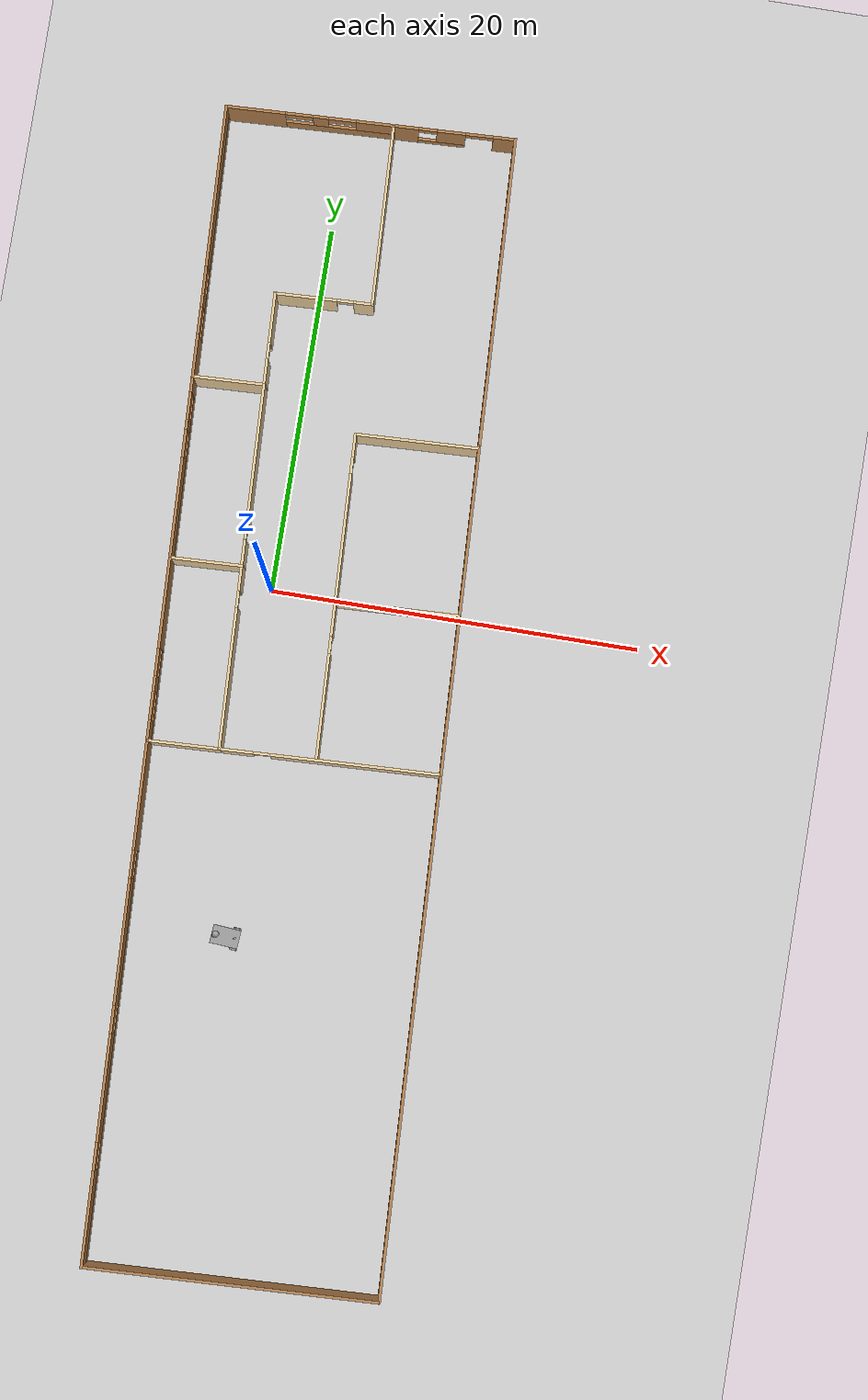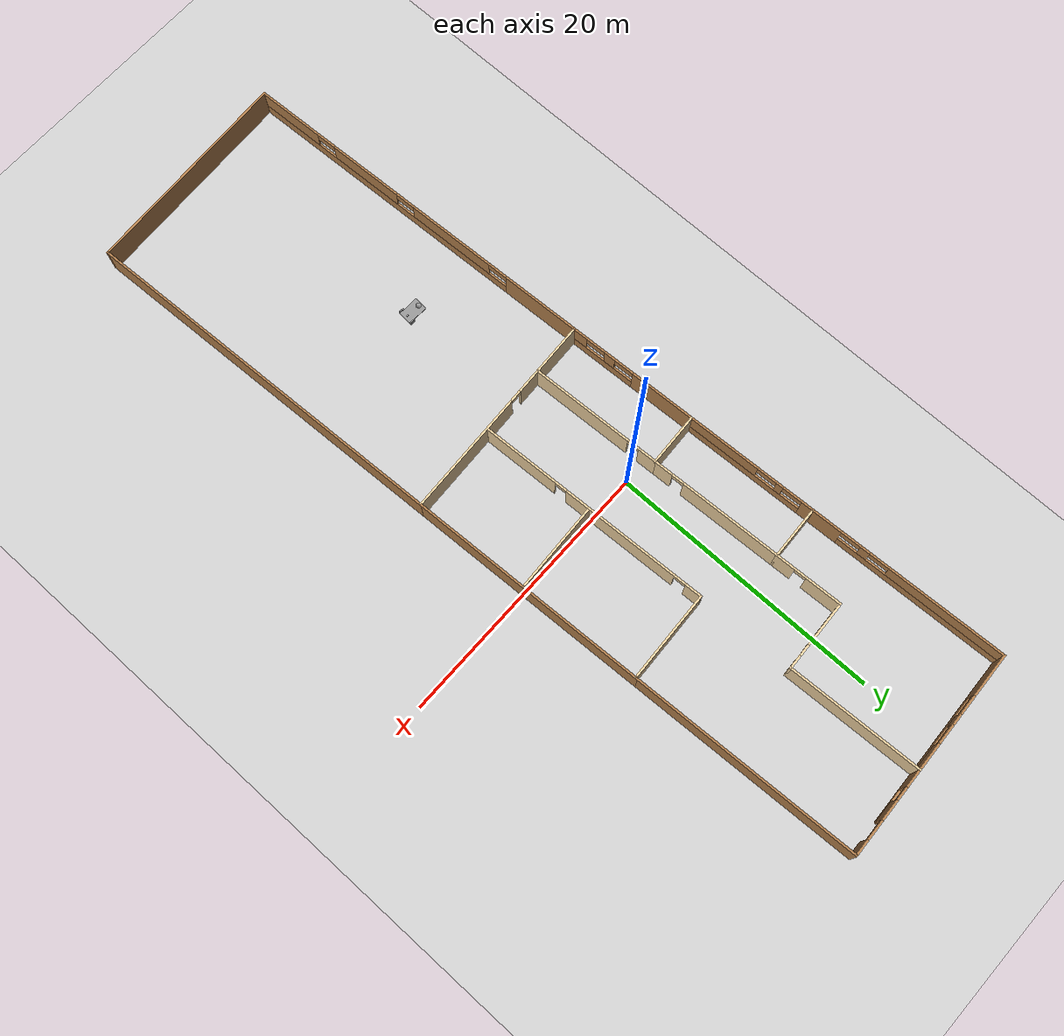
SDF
<sdf version="1.6">
 <world name="default">
  <light name="sun" type="directional">
   <pose>0 0 10 0 -0 0</pose>
   <diffuse>0.8 0.8 0.8 1</diffuse>
   <specular>0.2 0.2 0.2 1</specular>
   <attenuation>
    <range>1000</range>
    <constant>0.9</constant>
    <linear>0.01</linear>
    <quadratic>0.001</quadratic>
   </attenuation>
   <direction>-0.5 0.1 -0.9</direction>
  </light>
  <model name="ground_plane">
   <static>1</static>
   <link name="link">
    <collision name="collision">
     <geometry><plane><normal>0 0 1</normal><size>100 100</size></plane></geometry>
     <surface><friction><ode><mu>100</mu><mu2>50</mu2></ode></friction></surface>
    </collision>
    <visual name="visual">
     <cast_shadows>0</cast_shadows>
     <geometry><plane><normal>0 0 1</normal><size>100 100</size></plane></geometry>
     <material>
      <script><uri>file://media/materials/scripts/gazebo.material</uri><name>Gazebo/Grey</name></script>
     </material>
    </visual>
   </link>
  </model>
  <gravity>0 0 -9.8</gravity>
  <magnetic_field>6e-06 2.3e-05 -4.2e-05</magnetic_field>
  <atmosphere type="adiabatic"/>
  <physics name="default_physics" default="0" type="ode">
   <max_step_size>0.001</max_step_size>
   <real_time_factor>1</real_time_factor>
   <real_time_update_rate>1000</real_time_update_rate>
  </physics>
  <scene><ambient>0.4 0.4 0.4 1</ambient><background>0.7 0.7 0.7 1</background><shadows>1</shadows></scene>
  <spherical_coordinates>
   <surface_model>EARTH_WGS84</surface_model>
   <latitude_deg>0</latitude_deg>
   <longitude_deg>0</longitude_deg>
   <elevation>0</elevation>
   <heading_deg>0</heading_deg>
  </spherical_coordinates>
  <model name="mymodel">
   <pose>2.59322 -5.49881 0 0 -0 1.61356</pose>
   <link name="Wall_119">
    <pose>21.35 1.375 0 0 0 -1.5708</pose>
    <visual name="Wall_119_Visual_0">
     <pose>-0.987502 0 1.25 0 -0 0</pose>
     <geometry><box><size>3.425 0.15 2.5</size></box></geometry>
     <material>
      <script><uri>file://media/materials/scripts/gazebo.material</uri><name>Gazebo/Grey</name></script>
      <ambient>0.921569 0.807843 0.615686 1</ambient>
     </material>
    </visual>
    <collision name="Wall_119_Collision_0">
     <geometry><box><size>3.425 0.15 2.5</size></box></geometry>
     <pose>-0.987502 0 1.25 0 -0 0</pose>
    </collision>
    <visual name="Wall_119_Visual_1">
     <pose>2.1625 0 1.25 0 -0 0</pose>
     <geometry><box><size>1.075 0.15 2.5</size></box></geometry>
     <material>
      <script><uri>file://media/materials/scripts/gazebo.material</uri><name>Gazebo/Grey</name></script>
      <ambient>0.921569 0.807843 0.615686 1</ambient>
     </material>
    </visual>
    <collision name="Wall_119_Collision_1">
     <geometry><box><size>1.075 0.15 2.5</size></box></geometry>
     <pose>2.1625 0 1.25 0 -0 0</pose>
    </collision>
    <visual name="Wall_119_Visual_2">
     <pose>1.175 0 2.25 0 -0 0</pose>
     <geometry><box><size>0.9 0.15 0.5</size></box></geometry>
     <material>
      <script><uri>file://media/materials/scripts/gazebo.material</uri><name>Gazebo/Grey</name></script>
      <ambient>0.921569 0.807843 0.615686 1</ambient>
     </material>
    </visual>
    <collision name="Wall_119_Collision_2">
     <geometry><box><size>0.9 0.15 0.5</size></box></geometry>
     <pose>1.175 0 2.25 0 -0 0</pose>
    </collision>
   </link>
   <link name="Wall_123">
    <collision name="Wall_123_Collision">
     <geometry><box><size>10 0.15 2.5</size></box></geometry>
     <pose>0 0 1.25 0 -0 0</pose>
    </collision>
    <visual name="Wall_123_Visual">
     <pose>0 0 1.25 0 -0 0</pose>
     <geometry><box><size>10 0.15 2.5</size></box></geometry>
     <material>
      <script><uri>file://media/materials/scripts/gazebo.material</uri><name>Gazebo/Grey</name></script>
      <ambient>0.921569 0.807843 0.615686 1</ambient>
     </material>
    </visual>
    <pose>26.275 -1.25 0 0 -0 0</pose>
   </link>
   <link name="Wall_125">
    <pose>1.575 7.85 0 0 -0 3.14159</pose>
    <visual name="Wall_125_Visual_0">
     <pose>-2.52053 0 1.25 0 -0 0</pose>
     <geometry><box><size>4.95895 0.15 2.5</size></box></geometry>
     <material>
      <script><uri>file://media/materials/scripts/gazebo.material</uri><name>Gazebo/Wood</name></script>
      <ambient>0.996078 0.47451 0.0196078 1</ambient>
     </material>
    </visual>
    <collision name="Wall_125_Collision_0">
     <geometry><box><size>4.95895 0.15 2.5</size></box></geometry>
     <pose>-2.52053 0 1.25 0 -0 0</pose>
    </collision>
    <visual name="Wall_125_Visual_1">
     <pose>2.47947 0 0.5 0 -0 0</pose>
     <geometry><box><size>5.04105 0.15 1</size></box></geometry>
     <material>
      <script><uri>file://media/materials/scripts/gazebo.material</uri><name>Gazebo/Wood</name></script>
      <ambient>0.996078 0.47451 0.0196078 1</ambient>
     </material>
    </visual>
    <collision name="Wall_125_Collision_1">
     <geometry><box><size>5.04105 0.15 1</size></box></geometry>
     <pose>2.47947 0 0.5 0 -0 0</pose>
    </collision>
    <visual name="Wall_125_Visual_2">
     <pose>1.88216 0 1.75 0 -0 0</pose>
     <geometry><box><size>0.846424 0.15 1.5</size></box></geometry>
     <material>
      <script><uri>file://media/materials/scripts/gazebo.material</uri><name>Gazebo/Wood</name></script>
      <ambient>0.996078 0.47451 0.0196078 1</ambient>
     </material>
    </visual>
    <collision name="Wall_125_Collision_2">
     <geometry><box><size>0.846424 0.15 1.5</size></box></geometry>
     <pose>1.88216 0 1.75 0 -0 0</pose>
    </collision>
    <visual name="Wall_125_Visual_3">
     <pose>4.40268 0 1.75 0 -0 0</pose>
     <geometry><box><size>1.19463 0.15 1.5</size></box></geometry>
     <material>
      <script><uri>file://media/materials/scripts/gazebo.material</uri><name>Gazebo/Wood</name></script>
      <ambient>0.996078 0.47451 0.0196078 1</ambient>
     </material>
    </visual>
    <collision name="Wall_125_Collision_3">
     <geometry><box><size>1.19463 0.15 1.5</size></box></geometry>
     <pose>4.40268 0 1.75 0 -0 0</pose>
    </collision>
    <visual name="Wall_125_Visual_4">
     <pose>0.708946 0 2.15 0 -0 0</pose>
     <geometry><box><size>1.5 0.15 0.7</size></box></geometry>
     <material>
      <script><uri>file://media/materials/scripts/gazebo.material</uri><name>Gazebo/Wood</name></script>
      <ambient>0.996078 0.47451 0.0196078 1</ambient>
     </material>
    </visual>
    <collision name="Wall_125_Collision_4">
     <geometry><box><size>1.5 0.15 0.7</size></box></geometry>
     <pose>0.708946 0 2.15 0 -0 0</pose>
    </collision>
    <visual name="Wall_125_Visual_5">
     <pose>3.05537 0 2.15 0 -0 0</pose>
     <geometry><box><size>1.5 0.15 0.7</size></box></geometry>
     <material>
      <script><uri>file://media/materials/scripts/gazebo.material</uri><name>Gazebo/Wood</name></script>
      <ambient>0.996078 0.47451 0.0196078 1</ambient>
     </material>
    </visual>
    <collision name="Wall_125_Collision_5">
     <geometry><box><size>1.5 0.15 0.7</size></box></geometry>
     <pose>3.05537 0 2.15 0 -0 0</pose>
    </collision>
   </link>
   <link name="Wall_127">
    <collision name="Wall_127_Collision">
     <geometry><box><size>4 0.15 2.5</size></box></geometry>
     <pose>0 0 1.25 0 -0 0</pose>
    </collision>
    <visual name="Wall_127_Visual">
     <pose>0 0 1.25 0 -0 0</pose>
     <geometry><box><size>4 0.15 2.5</size></box></geometry>
     <material>
      <script><uri>file://media/materials/scripts/gazebo.material</uri><name>Gazebo/Grey</name></script>
      <ambient>0.921569 0.807843 0.615686 1</ambient>
     </material>
    </visual>
    <pose>-3.35 5.925 0 0 0 -1.5708</pose>
   </link>
   <link name="Wall_129">
    <pose>1.575 4 0 0 -0 0</pose>
    <visual name="Wall_129_Visual_0">
     <pose>-1.15906 0 1.25 0 -0 0</pose>
     <geometry><box><size>7.68187 0.15 2.5</size></box></geometry>
     <material>
      <script><uri>file://media/materials/scripts/gazebo.material</uri><name>Gazebo/Grey</name></script>
      <ambient>0.921569 0.807843 0.615686 1</ambient>
     </material>
    </visual>
    <collision name="Wall_129_Collision_0">
     <geometry><box><size>7.68187 0.15 2.5</size></box></geometry>
     <pose>-1.15906 0 1.25 0 -0 0</pose>
    </collision>
    <visual name="Wall_129_Visual_1">
     <pose>4.29094 0 1.25 0 -0 0</pose>
     <geometry><box><size>1.41813 0.15 2.5</size></box></geometry>
     <material>
      <script><uri>file://media/materials/scripts/gazebo.material</uri><name>Gazebo/Grey</name></script>
      <ambient>0.921569 0.807843 0.615686 1</ambient>
     </material>
    </visual>
    <collision name="Wall_129_Collision_1">
     <geometry><box><size>1.41813 0.15 2.5</size></box></geometry>
     <pose>4.29094 0 1.25 0 -0 0</pose>
    </collision>
    <visual name="Wall_129_Visual_2">
     <pose>3.13187 0 2.25 0 -0 0</pose>
     <geometry><box><size>0.9 0.15 0.5</size></box></geometry>
     <material>
      <script><uri>file://media/materials/scripts/gazebo.material</uri><name>Gazebo/Grey</name></script>
      <ambient>0.921569 0.807843 0.615686 1</ambient>
     </material>
    </visual>
    <collision name="Wall_129_Collision_2">
     <geometry><box><size>0.9 0.15 0.5</size></box></geometry>
     <pose>3.13187 0 2.25 0 -0 0</pose>
    </collision>
   </link>
   <link name="Wall_144">
    <pose>-17.275 7.85 0 0 -0 3.14159</pose>
    <visual name="Wall_144_Visual_0">
     <pose>-11.0233 0 1.25 0 -0 0</pose>
     <geometry><box><size>5.95337 0.15 2.5</size></box></geometry>
     <material>
      <script><uri>file://media/materials/scripts/gazebo.material</uri><name>Gazebo/Wood</name></script>
      <ambient>0.996078 0.47451 0.0196078 1</ambient>
     </material>
    </visual>
    <collision name="Wall_144_Collision_0">
     <geometry><box><size>5.95337 0.15 2.5</size></box></geometry>
     <pose>-11.0233 0 1.25 0 -0 0</pose>
    </collision>
    <visual name="Wall_144_Visual_1">
     <pose>2.97669 0 0.5 0 -0 0</pose>
     <geometry><box><size>22.0466 0.15 1</size></box></geometry>
     <material>
      <script><uri>file://media/materials/scripts/gazebo.material</uri><name>Gazebo/Wood</name></script>
      <ambient>0.996078 0.47451 0.0196078 1</ambient>
     </material>
    </visual>
    <collision name="Wall_144_Collision_1">
     <geometry><box><size>22.0466 0.15 1</size></box></geometry>
     <pose>2.97669 0 0.5 0 -0 0</pose>
    </collision>
    <visual name="Wall_144_Visual_2">
     <pose>-3.18177 0 1.75 0 -0 0</pose>
     <geometry><box><size>6.72973 0.15 1.5</size></box></geometry>
     <material>
      <script><uri>file://media/materials/scripts/gazebo.material</uri><name>Gazebo/Wood</name></script>
      <ambient>0.996078 0.47451 0.0196078 1</ambient>
     </material>
    </visual>
    <collision name="Wall_144_Collision_2">
     <geometry><box><size>6.72973 0.15 1.5</size></box></geometry>
     <pose>-3.18177 0 1.75 0 -0 0</pose>
    </collision>
    <visual name="Wall_144_Visual_3">
     <pose>4.53578 0 1.75 0 -0 0</pose>
     <geometry><box><size>5.70537 0.15 1.5</size></box></geometry>
     <material>
      <script><uri>file://media/materials/scripts/gazebo.material</uri><name>Gazebo/Wood</name></script>
      <ambient>0.996078 0.47451 0.0196078 1</ambient>
     </material>
    </visual>
    <collision name="Wall_144_Collision_3">
     <geometry><box><size>5.70537 0.15 1.5</size></box></geometry>
     <pose>4.53578 0 1.75 0 -0 0</pose>
    </collision>
    <visual name="Wall_144_Visual_4">
     <pose>11.4442 0 1.75 0 -0 0</pose>
     <geometry><box><size>5.11153 0.15 1.5</size></box></geometry>
     <material>
      <script><uri>file://media/materials/scripts/gazebo.material</uri><name>Gazebo/Wood</name></script>
      <ambient>0.996078 0.47451 0.0196078 1</ambient>
     </material>
    </visual>
    <collision name="Wall_144_Collision_4">
     <geometry><box><size>5.11153 0.15 1.5</size></box></geometry>
     <pose>11.4442 0 1.75 0 -0 0</pose>
    </collision>
    <visual name="Wall_144_Visual_5">
     <pose>-7.29663 0 2.15 0 -0 0</pose>
     <geometry><box><size>1.5 0.15 0.7</size></box></geometry>
     <material>
      <script><uri>file://media/materials/scripts/gazebo.material</uri><name>Gazebo/Wood</name></script>
      <ambient>0.996078 0.47451 0.0196078 1</ambient>
     </material>
    </visual>
    <collision name="Wall_144_Collision_5">
     <geometry><box><size>1.5 0.15 0.7</size></box></geometry>
     <pose>-7.29663 0 2.15 0 -0 0</pose>
    </collision>
    <visual name="Wall_144_Visual_6">
     <pose>0.933096 0 2.15 0 -0 0</pose>
     <geometry><box><size>1.5 0.15 0.7</size></box></geometry>
     <material>
      <script><uri>file://media/materials/scripts/gazebo.material</uri><name>Gazebo/Wood</name></script>
      <ambient>0.996078 0.47451 0.0196078 1</ambient>
     </material>
    </visual>
    <collision name="Wall_144_Collision_6">
     <geometry><box><size>1.5 0.15 0.7</size></box></geometry>
     <pose>0.933096 0 2.15 0 -0 0</pose>
    </collision>
    <visual name="Wall_144_Visual_7">
     <pose>8.13847 0 2.15 0 -0 0</pose>
     <geometry><box><size>1.5 0.15 0.7</size></box></geometry>
     <material>
      <script><uri>file://media/materials/scripts/gazebo.material</uri><name>Gazebo/Wood</name></script>
      <ambient>0.996078 0.47451 0.0196078 1</ambient>
     </material>
    </visual>
    <collision name="Wall_144_Collision_7">
     <geometry><box><size>1.5 0.15 0.7</size></box></geometry>
     <pose>8.13847 0 2.15 0 -0 0</pose>
    </collision>
   </link>
   <link name="Wall_145">
    <collision name="Wall_145_Collision">
     <geometry><box><size>15.85 0.15 2.5</size></box></geometry>
     <pose>0 0 1.25 0 -0 0</pose>
    </collision>
    <visual name="Wall_145_Visual">
     <pose>0 0 1.25 0 -0 0</pose>
     <geometry><box><size>15.85 0.15 2.5</size></box></geometry>
     <material>
      <script><uri>file://media/materials/scripts/gazebo.material</uri><name>Gazebo/Wood</name></script>
      <ambient>0.996078 0.47451 0.0196078 1</ambient>
     </material>
    </visual>
    <pose>-31.2 0 0 0 0 -1.5708</pose>
   </link>
   <link name="Wall_148">
    <pose>-3.35 -1.925 0 0 0 -1.5708</pose>
    <visual name="Wall_148_Visual_0">
     <pose>-5.0473 0 1.25 0 -0 0</pose>
     <geometry><box><size>1.90541 0.15 2.5</size></box></geometry>
     <material>
      <script><uri>file://media/materials/scripts/gazebo.material</uri><name>Gazebo/Grey</name></script>
      <ambient>0.921569 0.807843 0.615686 1</ambient>
     </material>
    </visual>
    <collision name="Wall_148_Collision_0">
     <geometry><box><size>1.90541 0.15 2.5</size></box></geometry>
     <pose>-5.0473 0 1.25 0 -0 0</pose>
    </collision>
    <visual name="Wall_148_Visual_1">
     <pose>1.4027 0 1.25 0 -0 0</pose>
     <geometry><box><size>9.19459 0.15 2.5</size></box></geometry>
     <material>
      <script><uri>file://media/materials/scripts/gazebo.material</uri><name>Gazebo/Grey</name></script>
      <ambient>0.921569 0.807843 0.615686 1</ambient>
     </material>
    </visual>
    <collision name="Wall_148_Collision_1">
     <geometry><box><size>9.19459 0.15 2.5</size></box></geometry>
     <pose>1.4027 0 1.25 0 -0 0</pose>
    </collision>
    <visual name="Wall_148_Visual_2">
     <pose>-3.64459 0 2.25 0 -0 0</pose>
     <geometry><box><size>0.9 0.15 0.5</size></box></geometry>
     <material>
      <script><uri>file://media/materials/scripts/gazebo.material</uri><name>Gazebo/Grey</name></script>
      <ambient>0.921569 0.807843 0.615686 1</ambient>
     </material>
    </visual>
    <collision name="Wall_148_Collision_2">
     <geometry><box><size>0.9 0.15 0.5</size></box></geometry>
     <pose>-3.64459 0 2.25 0 -0 0</pose>
    </collision>
   </link>
   <link name="Wall_160">
    <pose>5.52431 -1.18597 0 0 0 -3e-06</pose>
    <visual name="Wall_160_Visual_0">
     <pose>-5.96657 0 1.25 0 -0 0</pose>
     <geometry><box><size>5.67479 0.15 2.5</size></box></geometry>
     <material>
      <script><uri>file://media/materials/scripts/gazebo.material</uri><name>Gazebo/Grey</name></script>
      <ambient>0.921569 0.807843 0.615686 1</ambient>
     </material>
    </visual>
    <collision name="Wall_160_Collision_0">
     <geometry><box><size>5.67479 0.15 2.5</size></box></geometry>
     <pose>-5.96657 0 1.25 0 -0 0</pose>
    </collision>
    <visual name="Wall_160_Visual_1">
     <pose>2.18678 0 1.25 0 -0 0</pose>
     <geometry><box><size>8.83193 0.15 2.5</size></box></geometry>
     <material>
      <script><uri>file://media/materials/scripts/gazebo.material</uri><name>Gazebo/Grey</name></script>
      <ambient>0.921569 0.807843 0.615686 1</ambient>
     </material>
    </visual>
    <collision name="Wall_160_Collision_1">
     <geometry><box><size>8.83193 0.15 2.5</size></box></geometry>
     <pose>2.18678 0 1.25 0 -0 0</pose>
    </collision>
    <visual name="Wall_160_Visual_2">
     <pose>8.15336 0 1.25 0 -0 0</pose>
     <geometry><box><size>1.30122 0.15 2.5</size></box></geometry>
     <material>
      <script><uri>file://media/materials/scripts/gazebo.material</uri><name>Gazebo/Grey</name></script>
      <ambient>0.921569 0.807843 0.615686 1</ambient>
     </material>
    </visual>
    <collision name="Wall_160_Collision_2">
     <geometry><box><size>1.30122 0.15 2.5</size></box></geometry>
     <pose>8.15336 0 1.25 0 -0 0</pose>
    </collision>
    <visual name="Wall_160_Visual_3">
     <pose>-2.67918 0 2.25 0 -0 0</pose>
     <geometry><box><size>0.9 0.15 0.5</size></box></geometry>
     <material>
      <script><uri>file://media/materials/scripts/gazebo.material</uri><name>Gazebo/Grey</name></script>
      <ambient>0.921569 0.807843 0.615686 1</ambient>
     </material>
    </visual>
    <collision name="Wall_160_Collision_3">
     <geometry><box><size>0.9 0.15 0.5</size></box></geometry>
     <pose>-2.67918 0 2.25 0 -0 0</pose>
    </collision>
    <visual name="Wall_160_Visual_4">
     <pose>7.05275 0 2.25 0 -0 0</pose>
     <geometry><box><size>0.9 0.15 0.5</size></box></geometry>
     <material>
      <script><uri>file://media/materials/scripts/gazebo.material</uri><name>Gazebo/Grey</name></script>
      <ambient>0.921569 0.807843 0.615686 1</ambient>
     </material>
    </visual>
    <collision name="Wall_160_Collision_4">
     <geometry><box><size>0.9 0.15 0.5</size></box></geometry>
     <pose>7.05275 0 2.25 0 -0 0</pose>
    </collision>
   </link>
   <link name="Wall_166">
    <pose>31.2 -4.55 0 0 0 -1.5708</pose>
    <visual name="Wall_166_Visual_0">
     <pose>-2.6617 0 1.25 0 -0 0</pose>
     <geometry><box><size>1.4266 0.15 2.5</size></box></geometry>
     <material>
      <script><uri>file://media/materials/scripts/gazebo.material</uri><name>Gazebo/Wood</name></script>
      <ambient>0.996078 0.47451 0.0196078 1</ambient>
     </material>
    </visual>
    <collision name="Wall_166_Collision_0">
     <geometry><box><size>1.4266 0.15 2.5</size></box></geometry>
     <pose>-2.6617 0 1.25 0 -0 0</pose>
    </collision>
    <visual name="Wall_166_Visual_1">
     <pose>2.74194 0 1.25 0 -0 0</pose>
     <geometry><box><size>1.26611 0.15 2.5</size></box></geometry>
     <material>
      <script><uri>file://media/materials/scripts/gazebo.material</uri><name>Gazebo/Wood</name></script>
      <ambient>0.996078 0.47451 0.0196078 1</ambient>
     </material>
    </visual>
    <collision name="Wall_166_Collision_1">
     <geometry><box><size>1.26611 0.15 2.5</size></box></geometry>
     <pose>2.74194 0 1.25 0 -0 0</pose>
    </collision>
    <visual name="Wall_166_Visual_2">
     <pose>-0.669753 0 0.25 0 -0 0</pose>
     <geometry><box><size>2.55729 0.15 0.5</size></box></geometry>
     <material>
      <script><uri>file://media/materials/scripts/gazebo.material</uri><name>Gazebo/Wood</name></script>
      <ambient>0.996078 0.47451 0.0196078 1</ambient>
     </material>
    </visual>
    <collision name="Wall_166_Collision_2">
     <geometry><box><size>2.55729 0.15 0.5</size></box></geometry>
     <pose>-0.669753 0 0.25 0 -0 0</pose>
    </collision>
    <visual name="Wall_166_Visual_3">
     <pose>-0.169753 0 1.5 0 -0 0</pose>
     <geometry><box><size>1.55729 0.15 2</size></box></geometry>
     <material>
      <script><uri>file://media/materials/scripts/gazebo.material</uri><name>Gazebo/Wood</name></script>
      <ambient>0.996078 0.47451 0.0196078 1</ambient>
     </material>
    </visual>
    <collision name="Wall_166_Collision_3">
     <geometry><box><size>1.55729 0.15 2</size></box></geometry>
     <pose>-0.169753 0 1.5 0 -0 0</pose>
    </collision>
    <visual name="Wall_166_Visual_4">
     <pose>-1.4484 0 2.25 0 -0 0</pose>
     <geometry><box><size>1 0.15 0.5</size></box></geometry>
     <material>
      <script><uri>file://media/materials/scripts/gazebo.material</uri><name>Gazebo/Wood</name></script>
      <ambient>0.996078 0.47451 0.0196078 1</ambient>
     </material>
    </visual>
    <collision name="Wall_166_Collision_4">
     <geometry><box><size>1 0.15 0.5</size></box></geometry>
     <pose>-1.4484 0 2.25 0 -0 0</pose>
    </collision>
    <visual name="Wall_166_Visual_5">
     <pose>1.35889 0 2.25 0 -0 0</pose>
     <geometry><box><size>1.5 0.15 0.5</size></box></geometry>
     <material>
      <script><uri>file://media/materials/scripts/gazebo.material</uri><name>Gazebo/Wood</name></script>
      <ambient>0.996078 0.47451 0.0196078 1</ambient>
     </material>
    </visual>
    <collision name="Wall_166_Collision_5">
     <geometry><box><size>1.5 0.15 0.5</size></box></geometry>
     <pose>1.35889 0 2.25 0 -0 0</pose>
    </collision>
   </link>
   <link name="Wall_170">
    <collision name="Wall_170_Collision">
     <geometry><box><size>6.814 0.15 2.5</size></box></geometry>
     <pose>0 0 1.25 0 -0 0</pose>
    </collision>
    <visual name="Wall_170_Visual">
     <pose>0 0 1.25 0 -0 0</pose>
     <geometry><box><size>6.814 0.15 2.5</size></box></geometry>
     <material>
      <script><uri>file://media/materials/scripts/gazebo.material</uri><name>Gazebo/Grey</name></script>
      <ambient>0.921569 0.807843 0.615686 1</ambient>
     </material>
    </visual>
    <pose>14.253 -4.518 0 0 0 -1.5708</pose>
   </link>
   <link name="Wall_173">
    <collision name="Wall_173_Collision">
     <geometry><box><size>17 0.15 2.5</size></box></geometry>
     <pose>0 0 1.25 0 -0 0</pose>
    </collision>
    <visual name="Wall_173_Visual">
     <pose>0 0 1.25 0 -0 0</pose>
     <geometry><box><size>17 0.15 2.5</size></box></geometry>
     <material>
      <script><uri>file://media/materials/scripts/gazebo.material</uri><name>Gazebo/Wood</name></script>
      <ambient>0.996078 0.47451 0.0196078 1</ambient>
     </material>
    </visual>
    <pose>22.775 -7.85 0 0 -0 3.14159</pose>
   </link>
   <link name="Wall_174">
    <collision name="Wall_174_Collision">
     <geometry><box><size>17.85 0.15 2.5</size></box></geometry>
     <pose>0 0 1.25 0 -0 0</pose>
    </collision>
    <visual name="Wall_174_Visual">
     <pose>0 0 1.25 0 -0 0</pose>
     <geometry><box><size>17.85 0.15 2.5</size></box></geometry>
     <material>
      <script><uri>file://media/materials/scripts/gazebo.material</uri><name>Gazebo/Wood</name></script>
      <ambient>0.996078 0.47451 0.0196078 1</ambient>
     </material>
    </visual>
    <pose>5.5 -7.85 0 0 -0 3.14159</pose>
   </link>
   <link name="Wall_175">
    <collision name="Wall_175_Collision">
     <geometry><box><size>28 0.15 2.5</size></box></geometry>
     <pose>0 0 1.25 0 -0 0</pose>
    </collision>
    <visual name="Wall_175_Visual">
     <pose>0 0 1.25 0 -0 0</pose>
     <geometry><box><size>28 0.15 2.5</size></box></geometry>
     <material>
      <script><uri>file://media/materials/scripts/gazebo.material</uri><name>Gazebo/Wood</name></script>
      <ambient>0.996078 0.47451 0.0196078 1</ambient>
     </material>
    </visual>
    <pose>-17.275 -7.85 0 0 -0 3.14159</pose>
   </link>
   <link name="Wall_177">
    <collision name="Wall_177_Collision">
     <geometry><box><size>6.75 0.15 2.5</size></box></geometry>
     <pose>0 0 1.25 0 -0 0</pose>
    </collision>
    <visual name="Wall_177_Visual">
     <pose>0 0 1.25 0 -0 0</pose>
     <geometry><box><size>6.75 0.15 2.5</size></box></geometry>
     <material>
      <script><uri>file://media/materials/scripts/gazebo.material</uri><name>Gazebo/Grey</name></script>
      <ambient>0.921569 0.807843 0.615686 1</ambient>
     </material>
    </visual>
    <pose>5.18454 -4.51051 0 0 0 -1.5708</pose>
   </link>
   <link name="Wall_29">
    <pose>23.775 7.85 0 0 -0 0</pose>
    <visual name="Wall_29_Visual_0">
     <pose>-6.31514 0 1.25 0 -0 0</pose>
     <geometry><box><size>2.36971 0.15 2.5</size></box></geometry>
     <material>
      <script><uri>file://media/materials/scripts/gazebo.material</uri><name>Gazebo/Wood</name></script>
      <ambient>0.996078 0.47451 0.0196078 1</ambient>
     </material>
    </visual>
    <collision name="Wall_29_Collision_0">
     <geometry><box><size>2.36971 0.15 2.5</size></box></geometry>
     <pose>-6.31514 0 1.25 0 -0 0</pose>
    </collision>
    <visual name="Wall_29_Visual_1">
     <pose>1.18486 0 0.5 0 -0 0</pose>
     <geometry><box><size>12.6303 0.15 1</size></box></geometry>
     <material>
      <script><uri>file://media/materials/scripts/gazebo.material</uri><name>Gazebo/Wood</name></script>
      <ambient>0.996078 0.47451 0.0196078 1</ambient>
     </material>
    </visual>
    <collision name="Wall_29_Collision_1">
     <geometry><box><size>12.6303 0.15 1</size></box></geometry>
     <pose>1.18486 0 0.5 0 -0 0</pose>
    </collision>
    <visual name="Wall_29_Visual_2">
     <pose>-3.26225 0 1.75 0 -0 0</pose>
     <geometry><box><size>0.736064 0.15 1.5</size></box></geometry>
     <material>
      <script><uri>file://media/materials/scripts/gazebo.material</uri><name>Gazebo/Wood</name></script>
      <ambient>0.996078 0.47451 0.0196078 1</ambient>
     </material>
    </visual>
    <collision name="Wall_29_Collision_2">
     <geometry><box><size>0.736064 0.15 1.5</size></box></geometry>
     <pose>-3.26225 0 1.75 0 -0 0</pose>
    </collision>
    <visual name="Wall_29_Visual_3">
     <pose>3.05289 0 1.75 0 -0 0</pose>
     <geometry><box><size>8.89422 0.15 1.5</size></box></geometry>
     <material>
      <script><uri>file://media/materials/scripts/gazebo.material</uri><name>Gazebo/Wood</name></script>
      <ambient>0.996078 0.47451 0.0196078 1</ambient>
     </material>
    </visual>
    <collision name="Wall_29_Collision_3">
     <geometry><box><size>8.89422 0.15 1.5</size></box></geometry>
     <pose>3.05289 0 1.75 0 -0 0</pose>
    </collision>
    <visual name="Wall_29_Visual_4">
     <pose>-4.38029 0 2.15 0 -0 0</pose>
     <geometry><box><size>1.5 0.15 0.7</size></box></geometry>
     <material>
      <script><uri>file://media/materials/scripts/gazebo.material</uri><name>Gazebo/Wood</name></script>
      <ambient>0.996078 0.47451 0.0196078 1</ambient>
     </material>
    </visual>
    <collision name="Wall_29_Collision_4">
     <geometry><box><size>1.5 0.15 0.7</size></box></geometry>
     <pose>-4.38029 0 2.15 0 -0 0</pose>
    </collision>
    <visual name="Wall_29_Visual_5">
     <pose>-2.14422 0 2.15 0 -0 0</pose>
     <geometry><box><size>1.5 0.15 0.7</size></box></geometry>
     <material>
      <script><uri>file://media/materials/scripts/gazebo.material</uri><name>Gazebo/Wood</name></script>
      <ambient>0.996078 0.47451 0.0196078 1</ambient>
     </material>
    </visual>
    <collision name="Wall_29_Collision_5">
     <geometry><box><size>1.5 0.15 0.7</size></box></geometry>
     <pose>-2.14422 0 2.15 0 -0 0</pose>
    </collision>
   </link>
   <link name="Wall_31">
    <pose>31.2 3.3 0 0 0 -1.5708</pose>
    <visual name="Wall_31_Visual_0">
     <pose>-2.97432 0 1.25 0 -0 0</pose>
     <geometry><box><size>3.30136 0.15 2.5</size></box></geometry>
     <material>
      <script><uri>file://media/materials/scripts/gazebo.material</uri><name>Gazebo/Wood</name></script>
      <ambient>0.996078 0.47451 0.0196078 1</ambient>
     </material>
    </visual>
    <collision name="Wall_31_Collision_0">
     <geometry><box><size>3.30136 0.15 2.5</size></box></geometry>
     <pose>-2.97432 0 1.25 0 -0 0</pose>
    </collision>
    <visual name="Wall_31_Visual_1">
     <pose>1.65068 0 0.5 0 -0 0</pose>
     <geometry><box><size>5.94864 0.15 1</size></box></geometry>
     <material>
      <script><uri>file://media/materials/scripts/gazebo.material</uri><name>Gazebo/Wood</name></script>
      <ambient>0.996078 0.47451 0.0196078 1</ambient>
     </material>
    </visual>
    <collision name="Wall_31_Collision_1">
     <geometry><box><size>5.94864 0.15 1</size></box></geometry>
     <pose>1.65068 0 0.5 0 -0 0</pose>
    </collision>
    <visual name="Wall_31_Visual_2">
     <pose>0.58726 0 1.75 0 -0 0</pose>
     <geometry><box><size>0.821797 0.15 1.5</size></box></geometry>
     <material>
      <script><uri>file://media/materials/scripts/gazebo.material</uri><name>Gazebo/Wood</name></script>
      <ambient>0.996078 0.47451 0.0196078 1</ambient>
     </material>
    </visual>
    <collision name="Wall_31_Collision_2">
     <geometry><box><size>0.821797 0.15 1.5</size></box></geometry>
     <pose>0.58726 0 1.75 0 -0 0</pose>
    </collision>
    <visual name="Wall_31_Visual_3">
     <pose>3.56158 0 1.75 0 -0 0</pose>
     <geometry><box><size>2.12684 0.15 1.5</size></box></geometry>
     <material>
      <script><uri>file://media/materials/scripts/gazebo.material</uri><name>Gazebo/Wood</name></script>
      <ambient>0.996078 0.47451 0.0196078 1</ambient>
     </material>
    </visual>
    <collision name="Wall_31_Collision_3">
     <geometry><box><size>2.12684 0.15 1.5</size></box></geometry>
     <pose>3.56158 0 1.75 0 -0 0</pose>
    </collision>
    <visual name="Wall_31_Visual_4">
     <pose>-0.573638 0 2.15 0 -0 0</pose>
     <geometry><box><size>1.5 0.15 0.7</size></box></geometry>
     <material>
      <script><uri>file://media/materials/scripts/gazebo.material</uri><name>Gazebo/Wood</name></script>
      <ambient>0.996078 0.47451 0.0196078 1</ambient>
     </material>
    </visual>
    <collision name="Wall_31_Collision_4">
     <geometry><box><size>1.5 0.15 0.7</size></box></geometry>
     <pose>-0.573638 0 2.15 0 -0 0</pose>
    </collision>
    <visual name="Wall_31_Visual_5">
     <pose>1.74816 0 2.15 0 -0 0</pose>
     <geometry><box><size>1.5 0.15 0.7</size></box></geometry>
     <material>
      <script><uri>file://media/materials/scripts/gazebo.material</uri><name>Gazebo/Wood</name></script>
      <ambient>0.996078 0.47451 0.0196078 1</ambient>
     </material>
    </visual>
    <collision name="Wall_31_Collision_5">
     <geometry><box><size>1.5 0.15 0.7</size></box></geometry>
     <pose>1.74816 0 2.15 0 -0 0</pose>
    </collision>
   </link>
   <link name="Wall_44">
    <pose>11.425 7.85 0 0 -0 3.14159</pose>
    <visual name="Wall_44_Visual_0">
     <pose>-4.52844 0 1.25 0 -0 0</pose>
     <geometry><box><size>0.943112 0.15 2.5</size></box></geometry>
     <material>
      <script><uri>file://media/materials/scripts/gazebo.material</uri><name>Gazebo/Wood</name></script>
      <ambient>0.996078 0.47451 0.0196078 1</ambient>
     </material>
    </visual>
    <collision name="Wall_44_Collision_0">
     <geometry><box><size>0.943112 0.15 2.5</size></box></geometry>
     <pose>-4.52844 0 1.25 0 -0 0</pose>
    </collision>
    <visual name="Wall_44_Visual_1">
     <pose>0.471556 0 0.5 0 -0 0</pose>
     <geometry><box><size>9.05689 0.15 1</size></box></geometry>
     <material>
      <script><uri>file://media/materials/scripts/gazebo.material</uri><name>Gazebo/Wood</name></script>
      <ambient>0.996078 0.47451 0.0196078 1</ambient>
     </material>
    </visual>
    <collision name="Wall_44_Collision_1">
     <geometry><box><size>9.05689 0.15 1</size></box></geometry>
     <pose>0.471556 0 0.5 0 -0 0</pose>
    </collision>
    <visual name="Wall_44_Visual_2">
     <pose>-2.28802 0 1.75 0 -0 0</pose>
     <geometry><box><size>0.537745 0.15 1.5</size></box></geometry>
     <material>
      <script><uri>file://media/materials/scripts/gazebo.material</uri><name>Gazebo/Wood</name></script>
      <ambient>0.996078 0.47451 0.0196078 1</ambient>
     </material>
    </visual>
    <collision name="Wall_44_Collision_2">
     <geometry><box><size>0.537745 0.15 1.5</size></box></geometry>
     <pose>-2.28802 0 1.75 0 -0 0</pose>
    </collision>
    <visual name="Wall_44_Visual_3">
     <pose>2.24043 0 1.75 0 -0 0</pose>
     <geometry><box><size>5.51914 0.15 1.5</size></box></geometry>
     <material>
      <script><uri>file://media/materials/scripts/gazebo.material</uri><name>Gazebo/Wood</name></script>
      <ambient>0.996078 0.47451 0.0196078 1</ambient>
     </material>
    </visual>
    <collision name="Wall_44_Collision_3">
     <geometry><box><size>5.51914 0.15 1.5</size></box></geometry>
     <pose>2.24043 0 1.75 0 -0 0</pose>
    </collision>
    <visual name="Wall_44_Visual_4">
     <pose>-3.30689 0 2.15 0 -0 0</pose>
     <geometry><box><size>1.5 0.15 0.7</size></box></geometry>
     <material>
      <script><uri>file://media/materials/scripts/gazebo.material</uri><name>Gazebo/Wood</name></script>
      <ambient>0.996078 0.47451 0.0196078 1</ambient>
     </material>
    </visual>
    <collision name="Wall_44_Collision_4">
     <geometry><box><size>1.5 0.15 0.7</size></box></geometry>
     <pose>-3.30689 0 2.15 0 -0 0</pose>
    </collision>
    <visual name="Wall_44_Visual_5">
     <pose>-1.26914 0 2.15 0 -0 0</pose>
     <geometry><box><size>1.5 0.15 0.7</size></box></geometry>
     <material>
      <script><uri>file://media/materials/scripts/gazebo.material</uri><name>Gazebo/Wood</name></script>
      <ambient>0.996078 0.47451 0.0196078 1</ambient>
     </material>
    </visual>
    <collision name="Wall_44_Collision_5">
     <geometry><box><size>1.5 0.15 0.7</size></box></geometry>
     <pose>-1.26914 0 2.15 0 -0 0</pose>
    </collision>
   </link>
   <link name="Wall_45">
    <collision name="Wall_45_Collision">
     <geometry><box><size>4 0.15 2.5</size></box></geometry>
     <pose>0 0 1.25 0 -0 0</pose>
    </collision>
    <visual name="Wall_45_Visual">
     <pose>0 0 1.25 0 -0 0</pose>
     <geometry><box><size>4 0.15 2.5</size></box></geometry>
     <material>
      <script><uri>file://media/materials/scripts/gazebo.material</uri><name>Gazebo/Grey</name></script>
      <ambient>0.921569 0.807843 0.615686 1</ambient>
     </material>
    </visual>
    <pose>6.5 5.925 0 0 0 -1.5708</pose>
   </link>
   <link name="Wall_80">
    <pose>11.425 4 0 0 -0 0</pose>
    <visual name="Wall_80_Visual_0">
     <pose>-4.24375 0 1.25 0 -0 0</pose>
     <geometry><box><size>1.51249 0.15 2.5</size></box></geometry>
     <material>
      <script><uri>file://media/materials/scripts/gazebo.material</uri><name>Gazebo/Grey</name></script>
      <ambient>0.921569 0.807843 0.615686 1</ambient>
     </material>
    </visual>
    <collision name="Wall_80_Collision_0">
     <geometry><box><size>1.51249 0.15 2.5</size></box></geometry>
     <pose>-4.24375 0 1.25 0 -0 0</pose>
    </collision>
    <visual name="Wall_80_Visual_1">
     <pose>1.20625 0 1.25 0 -0 0</pose>
     <geometry><box><size>7.58751 0.15 2.5</size></box></geometry>
     <material>
      <script><uri>file://media/materials/scripts/gazebo.material</uri><name>Gazebo/Grey</name></script>
      <ambient>0.921569 0.807843 0.615686 1</ambient>
     </material>
    </visual>
    <collision name="Wall_80_Collision_1">
     <geometry><box><size>7.58751 0.15 2.5</size></box></geometry>
     <pose>1.20625 0 1.25 0 -0 0</pose>
    </collision>
    <visual name="Wall_80_Visual_2">
     <pose>-3.03751 0 2.25 0 -0 0</pose>
     <geometry><box><size>0.9 0.15 0.5</size></box></geometry>
     <material>
      <script><uri>file://media/materials/scripts/gazebo.material</uri><name>Gazebo/Grey</name></script>
      <ambient>0.921569 0.807843 0.615686 1</ambient>
     </material>
    </visual>
    <collision name="Wall_80_Collision_2">
     <geometry><box><size>0.9 0.15 0.5</size></box></geometry>
     <pose>-3.03751 0 2.25 0 -0 0</pose>
    </collision>
   </link>
   <link name="Wall_81">
    <collision name="Wall_81_Collision">
     <geometry><box><size>4 0.15 2.5</size></box></geometry>
     <pose>0 0 1.25 0 -0 0</pose>
    </collision>
    <visual name="Wall_81_Visual">
     <pose>0 0 1.25 0 -0 0</pose>
     <geometry><box><size>4 0.15 2.5</size></box></geometry>
     <material>
      <script><uri>file://media/materials/scripts/gazebo.material</uri><name>Gazebo/Grey</name></script>
      <ambient>0.921569 0.807843 0.615686 1</ambient>
     </material>
    </visual>
    <pose>16.35 5.925 0 0 -0 1.5708</pose>
   </link>
   <link name="Wall_83">
    <pose>18.85 4 0 0 -0 0</pose>
    <visual name="Wall_83_Visual_0">
     <pose>-1.81995 0 1.25 0 -0 0</pose>
     <geometry><box><size>1.5101 0.15 2.5</size></box></geometry>
     <material>
      <script><uri>file://media/materials/scripts/gazebo.material</uri><name>Gazebo/Grey</name></script>
      <ambient>0.921569 0.807843 0.615686 1</ambient>
     </material>
    </visual>
    <collision name="Wall_83_Collision_0">
     <geometry><box><size>1.5101 0.15 2.5</size></box></geometry>
     <pose>-1.81995 0 1.25 0 -0 0</pose>
    </collision>
    <visual name="Wall_83_Visual_1">
     <pose>1.20505 0 1.25 0 -0 0</pose>
     <geometry><box><size>2.7399 0.15 2.5</size></box></geometry>
     <material>
      <script><uri>file://media/materials/scripts/gazebo.material</uri><name>Gazebo/Grey</name></script>
      <ambient>0.921569 0.807843 0.615686 1</ambient>
     </material>
    </visual>
    <collision name="Wall_83_Collision_1">
     <geometry><box><size>2.7399 0.15 2.5</size></box></geometry>
     <pose>1.20505 0 1.25 0 -0 0</pose>
    </collision>
    <visual name="Wall_83_Visual_2">
     <pose>-0.614896 0 2.25 0 -0 0</pose>
     <geometry><box><size>0.9 0.15 0.5</size></box></geometry>
     <material>
      <script><uri>file://media/materials/scripts/gazebo.material</uri><name>Gazebo/Grey</name></script>
      <ambient>0.921569 0.807843 0.615686 1</ambient>
     </material>
    </visual>
    <collision name="Wall_83_Collision_2">
     <geometry><box><size>0.9 0.15 0.5</size></box></geometry>
     <pose>-0.614896 0 2.25 0 -0 0</pose>
    </collision>
   </link>
   <static>1</static>
  </model>
  <model name="chassis_robot_with_camera">
   <link name="link_0">
    <pose>0.207166 0.002354 -0.014274 0 -0 0</pose>
    <inertial>
     <mass>1</mass>
     <inertia>
      <ixx>0.166667</ixx>
      <ixy>0</ixy>
      <ixz>0</ixz>
      <iyy>0.166667</iyy>
      <iyz>0</iyz>
      <izz>0.166667</izz>
     </inertia>
    </inertial>
    <visual name="visual">
     <geometry><box><size>1.5 1 0.1</size></box></geometry>
     <material>
      <lighting>1</lighting>
      <script><uri>file://media/materials/scripts/gazebo.material</uri><name>Gazebo/Grey</name></script>
      <ambient>0.3 0.3 0.3 1</ambient>
      <diffuse>0.7 0.7 0.7 1</diffuse>
      <specular>0.01 0.01 0.01 1</specular>
      <emissive>0 0 0 1</emissive>
      <shader type="vertex"><normal_map>__default__</normal_map></shader>
     </material>
    </visual>
    <collision name="collision">
     <geometry><box><size>1.5 1 0.1</size></box></geometry>
     <surface>
      <friction>
       <ode><mu>1</mu><mu2>1</mu2><fdir1>0 0 0</fdir1><slip1>0</slip1><slip2>0</slip2></ode>
       <torsional>
        <coefficient>1</coefficient>
        <patch_radius>0</patch_radius>
        <surface_radius>0</surface_radius>
        <use_patch_radius>1</use_patch_radius>
        <ode><slip>0</slip></ode>
       </torsional>
      </friction>
      <bounce><restitution_coefficient>0</restitution_coefficient><threshold>1e+06</threshold></bounce>
      <contact>
       <collide_without_contact>0</collide_without_contact>
       <collide_without_contact_bitmask>1</collide_without_contact_bitmask>
       <collide_bitmask>1</collide_bitmask>
       <ode>
        <soft_cfm>0</soft_cfm>
        <soft_erp>0.2</soft_erp>
        <kp>1e+13</kp>
        <kd>1</kd>
        <max_vel>0.01</max_vel>
        <min_depth>0</min_depth>
       </ode>
       <bullet>
        <split_impulse>1</split_impulse>
        <split_impulse_penetration_threshold>-0.01</split_impulse_penetration_threshold>
        <soft_cfm>0</soft_cfm>
        <soft_erp>0.2</soft_erp>
        <kp>1e+13</kp>
        <kd>1</kd>
       </bullet>
      </contact>
     </surface>
    </collision>
   </link>
   <link name="link_1_clone_clone">
    <pose>-0.341329 -0.545673 -0.014219 1.5707 -0 0</pose>
    <inertial>
     <mass>1</mass>
     <inertia><ixx>0.145833</ixx><ixy>0</ixy><ixz>0</ixz><iyy>0.145833</iyy><iyz>0</iyz><izz>0.125</izz></inertia>
    </inertial>
    <visual name="visual">
     <geometry><cylinder><radius>0.2</radius><length>0.1</length></cylinder></geometry>
     <material>
      <lighting>1</lighting>
      <script><uri>file://media/materials/scripts/gazebo.material</uri><name>Gazebo/Grey</name></script>
      <ambient>0.3 0.3 0.3 1</ambient>
      <diffuse>0.7 0.7 0.7 1</diffuse>
      <specular>0.01 0.01 0.01 1</specular>
      <emissive>0 0 0 1</emissive>
      <shader type="vertex"><normal_map>__default__</normal_map></shader>
     </material>
    </visual>
    <collision name="collision">
     <geometry><cylinder><radius>0.2</radius><length>0.1</length></cylinder></geometry>
     <surface>
      <friction>
       <ode><mu>1</mu><mu2>1</mu2><fdir1>0 0 0</fdir1><slip1>0</slip1><slip2>0</slip2></ode>
       <torsional>
        <coefficient>1</coefficient>
        <patch_radius>0</patch_radius>
        <surface_radius>0</surface_radius>
        <use_patch_radius>1</use_patch_radius>
        <ode><slip>0</slip></ode>
       </torsional>
      </friction>
      <bounce><restitution_coefficient>0</restitution_coefficient><threshold>1e+06</threshold></bounce>
      <contact>
       <collide_without_contact>0</collide_without_contact>
       <collide_without_contact_bitmask>1</collide_without_contact_bitmask>
       <collide_bitmask>1</collide_bitmask>
       <ode>
        <soft_cfm>0</soft_cfm>
        <soft_erp>0.2</soft_erp>
        <kp>1e+13</kp>
        <kd>1</kd>
        <max_vel>0.01</max_vel>
        <min_depth>0</min_depth>
       </ode>
       <bullet>
        <split_impulse>1</split_impulse>
        <split_impulse_penetration_threshold>-0.01</split_impulse_penetration_threshold>
        <soft_cfm>0</soft_cfm>
        <soft_erp>0.2</soft_erp>
        <kp>1e+13</kp>
        <kd>1</kd>
       </bullet>
      </contact>
     </surface>
    </collision>
   </link>
   <link name="link_1_clone_clone_clone">
    <pose>-0.341329 0.554365 -0.014274 1.5707 -0 0</pose>
    <inertial>
     <mass>1</mass>
     <inertia><ixx>0.145833</ixx><ixy>0</ixy><ixz>0</ixz><iyy>0.145833</iyy><iyz>0</iyz><izz>0.125</izz></inertia>
    </inertial>
    <visual name="visual">
     <geometry><cylinder><radius>0.2</radius><length>0.1</length></cylinder></geometry>
     <material>
      <lighting>1</lighting>
      <script><uri>file://media/materials/scripts/gazebo.material</uri><name>Gazebo/Grey</name></script>
      <ambient>0.3 0.3 0.3 1</ambient>
      <diffuse>0.7 0.7 0.7 1</diffuse>
      <specular>0.01 0.01 0.01 1</specular>
      <emissive>0 0 0 1</emissive>
      <shader type="vertex"><normal_map>__default__</normal_map></shader>
     </material>
    </visual>
    <collision name="collision">
     <geometry><cylinder><radius>0.2</radius><length>0.1</length></cylinder></geometry>
     <surface>
      <friction>
       <ode><mu>1</mu><mu2>1</mu2><fdir1>0 0 0</fdir1><slip1>0</slip1><slip2>0</slip2></ode>
       <torsional>
        <coefficient>1</coefficient>
        <patch_radius>0</patch_radius>
        <surface_radius>0</surface_radius>
        <use_patch_radius>1</use_patch_radius>
        <ode><slip>0</slip></ode>
       </torsional>
      </friction>
      <bounce><restitution_coefficient>0</restitution_coefficient><threshold>1e+06</threshold></bounce>
      <contact>
       <collide_without_contact>0</collide_without_contact>
       <collide_without_contact_bitmask>1</collide_without_contact_bitmask>
       <collide_bitmask>1</collide_bitmask>
       <ode>
        <soft_cfm>0</soft_cfm>
        <soft_erp>0.2</soft_erp>
        <kp>1e+13</kp>
        <kd>1</kd>
        <max_vel>0.01</max_vel>
        <min_depth>0</min_depth>
       </ode>
       <bullet>
        <split_impulse>1</split_impulse>
        <split_impulse_penetration_threshold>-0.01</split_impulse_penetration_threshold>
        <soft_cfm>0</soft_cfm>
        <soft_erp>0.2</soft_erp>
        <kp>1e+13</kp>
        <kd>1</kd>
       </bullet>
      </contact>
     </surface>
    </collision>
   </link>
   <link name="link_2">
    <pose>0.758671 0.004346 -0.014274 0 -0 0</pose>
    <inertial>
     <mass>1</mass>
     <inertia><ixx>0.1</ixx><ixy>0</ixy><ixz>0</ixz><iyy>0.1</iyy><iyz>0</iyz><izz>0.1</izz></inertia>
    </inertial>
    <visual name="visual">
     <geometry><sphere><radius>0.2</radius></sphere></geometry>
     <material>
      <lighting>1</lighting>
      <script><uri>file://media/materials/scripts/gazebo.material</uri><name>Gazebo/Grey</name></script>
      <ambient>0.3 0.3 0.3 1</ambient>
      <diffuse>0.7 0.7 0.7 1</diffuse>
      <specular>0.01 0.01 0.01 1</specular>
      <emissive>0 0 0 1</emissive>
      <shader type="vertex"><normal_map>__default__</normal_map></shader>
     </material>
    </visual>
    <collision name="collision">
     <geometry><sphere><radius>0.2</radius></sphere></geometry>
     <surface>
      <friction>
       <ode><mu>1</mu><mu2>1</mu2><fdir1>0 0 0</fdir1><slip1>0</slip1><slip2>0</slip2></ode>
       <torsional>
        <coefficient>1</coefficient>
        <patch_radius>0</patch_radius>
        <surface_radius>0</surface_radius>
        <use_patch_radius>1</use_patch_radius>
        <ode><slip>0</slip></ode>
       </torsional>
      </friction>
      <bounce><restitution_coefficient>0</restitution_coefficient><threshold>1e+06</threshold></bounce>
      <contact>
       <collide_without_contact>0</collide_without_contact>
       <collide_without_contact_bitmask>1</collide_without_contact_bitmask>
       <collide_bitmask>1</collide_bitmask>
       <ode>
        <soft_cfm>0</soft_cfm>
        <soft_erp>0.2</soft_erp>
        <kp>1e+13</kp>
        <kd>1</kd>
        <max_vel>0.01</max_vel>
        <min_depth>0</min_depth>
       </ode>
       <bullet>
        <split_impulse>1</split_impulse>
        <split_impulse_penetration_threshold>-0.01</split_impulse_penetration_threshold>
        <soft_cfm>0</soft_cfm>
        <soft_erp>0.2</soft_erp>
        <kp>1e+13</kp>
        <kd>1</kd>
       </bullet>
      </contact>
     </surface>
    </collision>
   </link>
   <model name="depth_camera">
    <link name="link">
     <pose>0 0 0.05 0 -0 0</pose>
     <inertial>
      <mass>0.1</mass>
      <inertia>
       <ixx>0.000166667</ixx>
       <iyy>0.000166667</iyy>
       <izz>0.000166667</izz>
       <ixy>0</ixy>
       <ixz>0</ixz>
       <iyz>0</iyz>
      </inertia>
     </inertial>
     <collision name="collision"><geometry><box><size>0.1 0.1 0.1</size></box></geometry></collision>
     <visual name="visual"><geometry><box><size>0.1 0.1 0.1</size></box></geometry></visual>
     <sensor name="camera" type="depth">
      <camera name="__default__">
       <horizontal_fov>1.047</horizontal_fov>
       <image><width>320</width><height>240</height></image>
       <clip><near>0.1</near><far>100</far></clip>
      </camera>
      <always_on>1</always_on>
      <update_rate>30</update_rate>
      <visualize>1</visualize>
     </sensor>
    </link>
    <pose>-0.283178 -0.015391 0.05704 0 -0 0</pose>
   </model>
   <joint name="link_0_JOINT_3" type="revolute">
    <parent>link_0</parent>
    <child>link_1_clone_clone</child>
    <axis>
     <xyz>0 0 1</xyz>
     <use_parent_model_frame>0</use_parent_model_frame>
     <limit>
      <lower>-1.79769e+308</lower>
      <upper>1.79769e+308</upper>
      <effort>-1</effort>
      <velocity>-1</velocity>
     </limit>
     <dynamics>
      <spring_reference>0</spring_reference>
      <spring_stiffness>0</spring_stiffness>
      <damping>0</damping>
     </dynamics>
    </axis>
    <physics>
     <ode><limit><cfm>0</cfm><erp>0.2</erp></limit><suspension><cfm>0</cfm><erp>0.2</erp></suspension></ode>
    </physics>
   </joint>
   <joint name="link_0_JOINT_4" type="revolute">
    <parent>link_0</parent>
    <child>link_1_clone_clone_clone</child>
    <axis>
     <xyz>0 0 1</xyz>
     <use_parent_model_frame>0</use_parent_model_frame>
     <limit>
      <lower>-1.79769e+308</lower>
      <upper>1.79769e+308</upper>
      <effort>-1</effort>
      <velocity>-1</velocity>
     </limit>
     <dynamics>
      <spring_reference>0</spring_reference>
      <spring_stiffness>0</spring_stiffness>
      <damping>0</damping>
     </dynamics>
    </axis>
    <physics>
     <ode><limit><cfm>0</cfm><erp>0.2</erp></limit><suspension><cfm>0</cfm><erp>0.2</erp></suspension></ode>
    </physics>
   </joint>
   <joint name="link_0_JOINT_5" type="ball">
    <parent>link_0</parent>
    <child>link_2</child>
    <physics>
     <ode><limit><cfm>0</cfm><erp>0.2</erp></limit><suspension><cfm>0</cfm><erp>0.2</erp></suspension></ode>
    </physics>
   </joint>
   <joint name="link_0_JOINT_7" type="fixed">
    <parent>link_0</parent>
    <child>depth_camera::link</child>
    <physics>
     <ode><limit><cfm>0</cfm><erp>0.2</erp></limit><suspension><cfm>0</cfm><erp>0.2</erp></suspension></ode>
    </physics>
   </joint>
   <static>0</static>
   <plugin name="follower" filename="libFollowerPlugin.so"/>
   <pose>0.780601 -18.8164 0.25421 5e-05 -0.117634 3.06163</pose>
  </model>
  <model name="white_ball">
   <link name="link_0">
    <pose>1e-06 -1e-06 -0 0 -0 0</pose>
    <inertial>
     <mass>1</mass>
     <inertia><ixx>0.1</ixx><ixy>0</ixy><ixz>0</ixz><iyy>0.1</iyy><iyz>0</iyz><izz>0.1</izz></inertia>
    </inertial>
    <visual name="visual">
     <geometry><sphere><radius>0.1</radius></sphere></geometry>
     <material>
      <lighting>0</lighting>
      <script><uri>file://media/materials/scripts/gazebo.material</uri><name>Gazebo/Grey</name></script>
      <ambient>1 1 1 1</ambient>
      <diffuse>1 1 1 1</diffuse>
      <specular>1 1 1 1</specular>
      <emissive>1 1 1 1</emissive>
      <shader type="vertex"><normal_map>__default__</normal_map></shader>
     </material>
    </visual>
    <collision name="collision">
     <geometry><sphere><radius>0.1</radius></sphere></geometry>
     <surface>
      <friction>
       <ode><mu>1</mu><mu2>1</mu2><fdir1>0 0 0</fdir1><slip1>0</slip1><slip2>0</slip2></ode>
       <torsional>
        <coefficient>1</coefficient>
        <patch_radius>0</patch_radius>
        <surface_radius>0</surface_radius>
        <use_patch_radius>1</use_patch_radius>
        <ode><slip>0</slip></ode>
       </torsional>
      </friction>
      <bounce><restitution_coefficient>0</restitution_coefficient><threshold>1e+06</threshold></bounce>
      <contact>
       <collide_without_contact>0</collide_without_contact>
       <collide_without_contact_bitmask>1</collide_without_contact_bitmask>
       <collide_bitmask>1</collide_bitmask>
       <ode>
        <soft_cfm>0</soft_cfm>
        <soft_erp>0.2</soft_erp>
        <kp>1e+13</kp>
        <kd>1</kd>
        <max_vel>0.01</max_vel>
        <min_depth>0</min_depth>
       </ode>
       <bullet>
        <split_impulse>1</split_impulse>
        <split_impulse_penetration_threshold>-0.01</split_impulse_penetration_threshold>
        <soft_cfm>0</soft_cfm>
        <soft_erp>0.2</soft_erp>
        <kp>1e+13</kp>
        <kd>1</kd>
       </bullet>
      </contact>
     </surface>
    </collision>
   </link>
   <static>0</static>
   <pose>0.685727 -18.8131 0.100001 0.863254 0.680512 -1.3611</pose>
  </model>
  <model name="white_ball_0">
   <link name="link_0">
    <pose>1e-06 -1e-06 -0 0 -0 0</pose>
    <inertial>
     <mass>1</mass>
     <inertia><ixx>0.1</ixx><ixy>0</ixy><ixz>0</ixz><iyy>0.1</iyy><iyz>0</iyz><izz>0.1</izz></inertia>
    </inertial>
    <visual name="visual">
     <geometry><sphere><radius>0.1</radius></sphere></geometry>
     <material>
      <lighting>0</lighting>
      <script><uri>file://media/materials/scripts/gazebo.material</uri><name>Gazebo/Grey</name></script>
      <ambient>1 1 1 1</ambient>
      <diffuse>1 1 1 1</diffuse>
      <specular>1 1 1 1</specular>
      <emissive>1 1 1 1</emissive>
      <shader type="vertex"><normal_map>__default__</normal_map></shader>
     </material>
    </visual>
    <collision name="collision">
     <geometry><sphere><radius>0.1</radius></sphere></geometry>
     <surface>
      <friction>
       <ode><mu>1</mu><mu2>1</mu2><fdir1>0 0 0</fdir1><slip1>0</slip1><slip2>0</slip2></ode>
       <torsional>
        <coefficient>1</coefficient>
        <patch_radius>0</patch_radius>
        <surface_radius>0</surface_radius>
        <use_patch_radius>1</use_patch_radius>
        <ode><slip>0</slip></ode>
       </torsional>
      </friction>
      <bounce><restitution_coefficient>0</restitution_coefficient><threshold>1e+06</threshold></bounce>
      <contact>
       <collide_without_contact>0</collide_without_contact>
       <collide_without_contact_bitmask>1</collide_without_contact_bitmask>
       <collide_bitmask>1</collide_bitmask>
       <ode>
        <soft_cfm>0</soft_cfm>
        <soft_erp>0.2</soft_erp>
        <kp>1e+13</kp>
        <kd>1</kd>
        <max_vel>0.01</max_vel>
        <min_depth>0</min_depth>
       </ode>
       <bullet>
        <split_impulse>1</split_impulse>
        <split_impulse_penetration_threshold>-0.01</split_impulse_penetration_threshold>
        <soft_cfm>0</soft_cfm>
        <soft_erp>0.2</soft_erp>
        <kp>1e+13</kp>
        <kd>1</kd>
       </bullet>
      </contact>
     </surface>
    </collision>
   </link>
   <static>0</static>
   <pose>-0.05223 4.14336 0.1 0 -0 0</pose>
  </model>
 </world>
</sdf>
